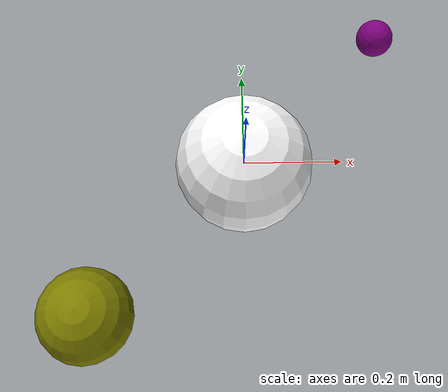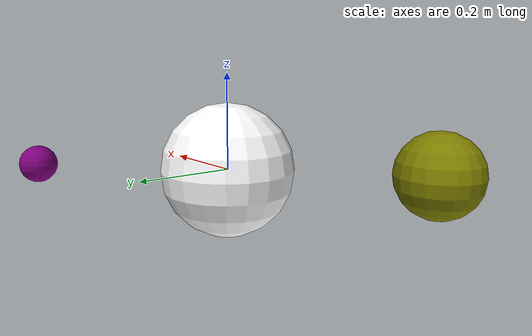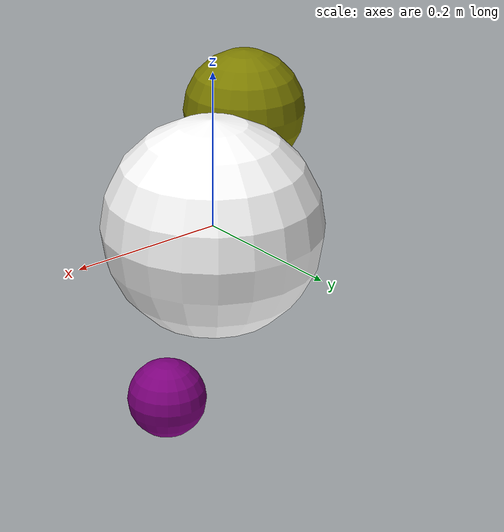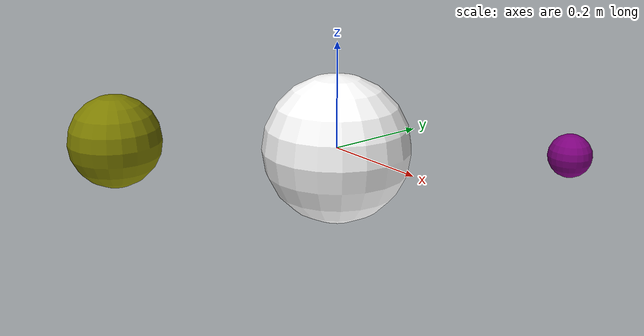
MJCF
<mujoco model='rolling ball'>
	<compiler inertiafromgeom='true' angle='degree'/>
    <default>
        <joint limited='true' damping='1' armature='0'/>
        <geom contype='1' conaffinity='1' condim='1' rgba='0.5 0.3 .4 1'
        	margin="0.001" solref=".02 1" solimp=".8 .8 .01"/>
        <motor ctrlrange='-.4 .4' ctrllimited='true'/>
		<!-- add some classes -->
    </default>

    <option timestep='0.1' iterations="50" tolerance="1e-10" solver="Newton" jacobian="dense" cone="elliptic"/>

    <size nstack="1000000"/>

    <visual>
        <map fogstart="3" fogend="5" force="0.1" znear="0.5"/>
        <quality shadowsize="2048" offsamples="8"/>
        <global offwidth="800" offheight="800"/>
    </visual>

    <asset>
		<texture type="skybox" builtin="gradient" width="128" height="128" rgb1=".4 .6 .8"
            rgb2="0 0 0"/>
        <texture name="texgeom" type="cube" builtin="flat" mark="cross" width="127" height="1278"
            rgb1="0.4 0.4 0.1" rgb2="0.5 0.5 0.1" markrgb="1 1 1" random="0.01"/>
        <texture name="texplane" type="2d" builtin="checker" rgb1=".2 .3 .4" rgb2=".1 0.15 0.2"
            width="512" height="512"/>
        <material name='MatPlane' reflectance='0.3' texture="texplane" texrepeat="1 1" texuniform="true"/>
    </asset>

    <worldbody>
        <light mode='targetbodycom' target='ball' directional='false' castshadow='false'  diffuse='.8 .8 .8' specular='0.3 0.3 0.3' pos='1 1 4.0' dir='0 0 -1'/>

		<body name='ball' pos='0.3 0.3 0.0'>
			<joint name='slide1' type='slide' range='-1.0 1.0' axis='1 0 0' />
			<joint name='slide2' type='slide' range='-1.0 1.0' axis='0 1 0' />
			<geom name='ball' type='sphere' size="0.04" rgba=".5 .0 .5 1"/>
		</body>

		<geom name='target' type='sphere' pos='-0.3 -0.3 0.0' size='0.09' rgba=".5 .5 .0 1"/>

        <!-- obstacle -->
        <body name='obstacle' pos='0 0 0'>
		    <geom name = 'obstacle' type='sphere' rgba='1 1 1 1' size = '0.14'/>
        </body>

        <camera name="camera1" mode="targetbody" pos="0 0 4.0" />
    </worldbody>

    <actuator>
        <motor joint='slide1' name='slide1' ctrlrange='-1.0 1.0'/>
		<motor joint='slide2' name='slide2' ctrlrange='-1.0 1.0'/>
	</actuator>

</mujoco>
